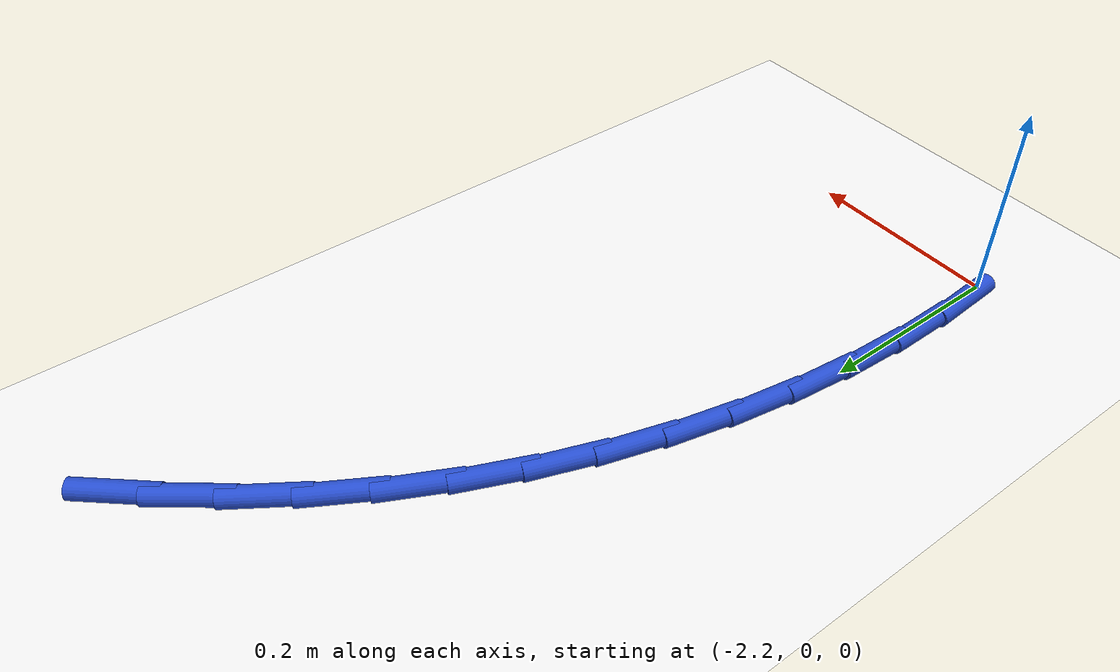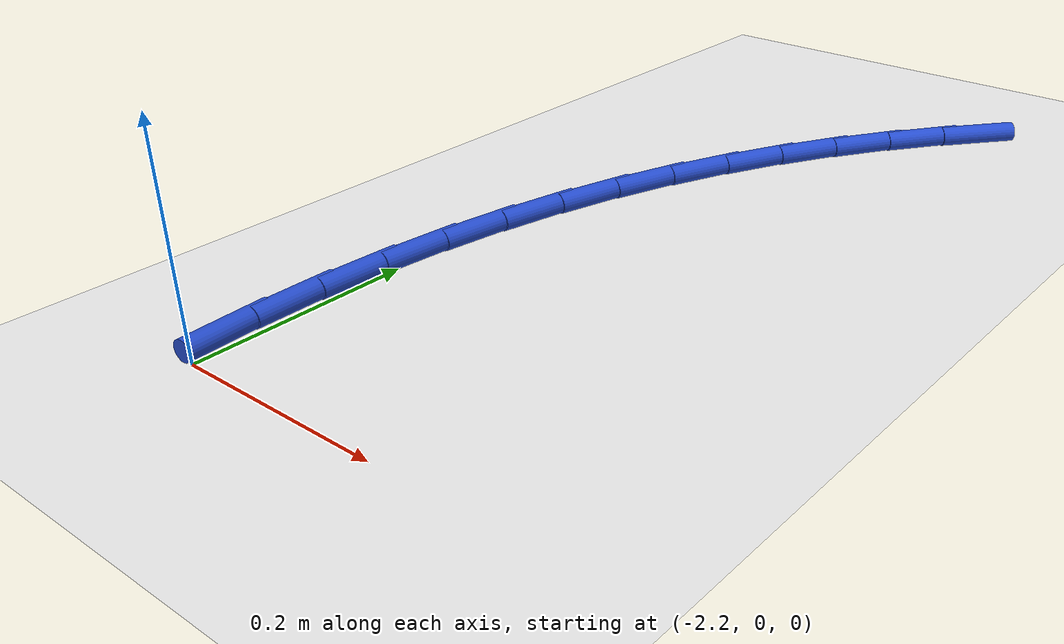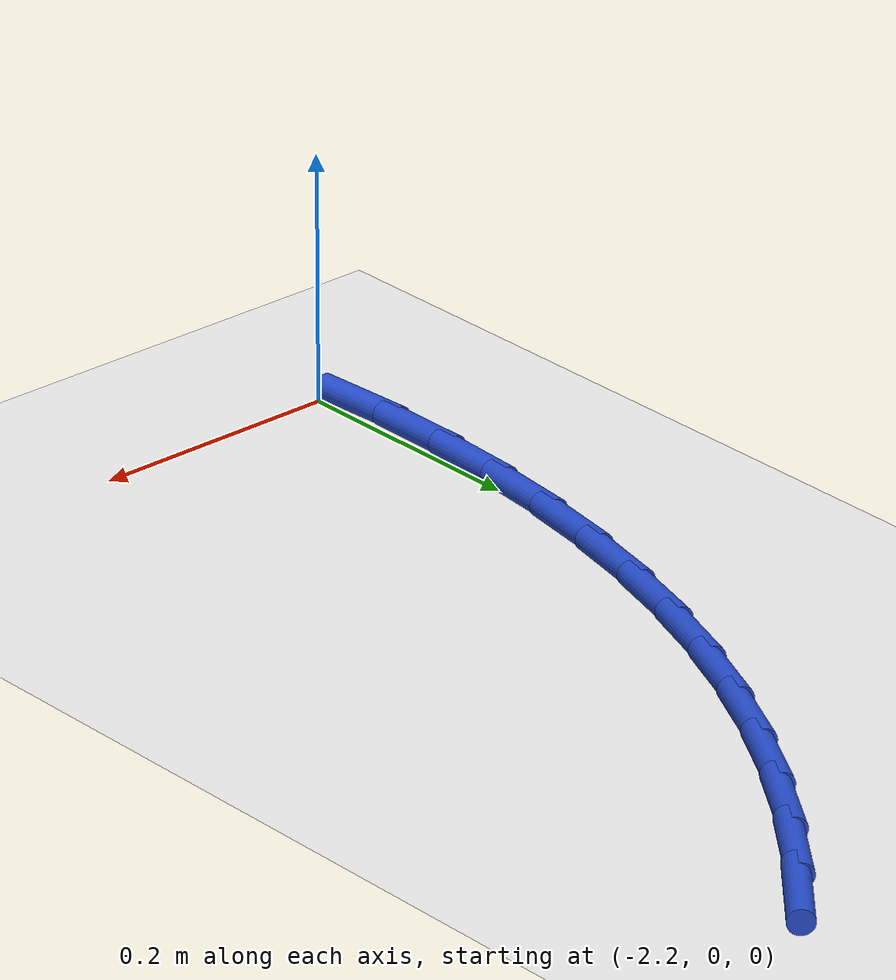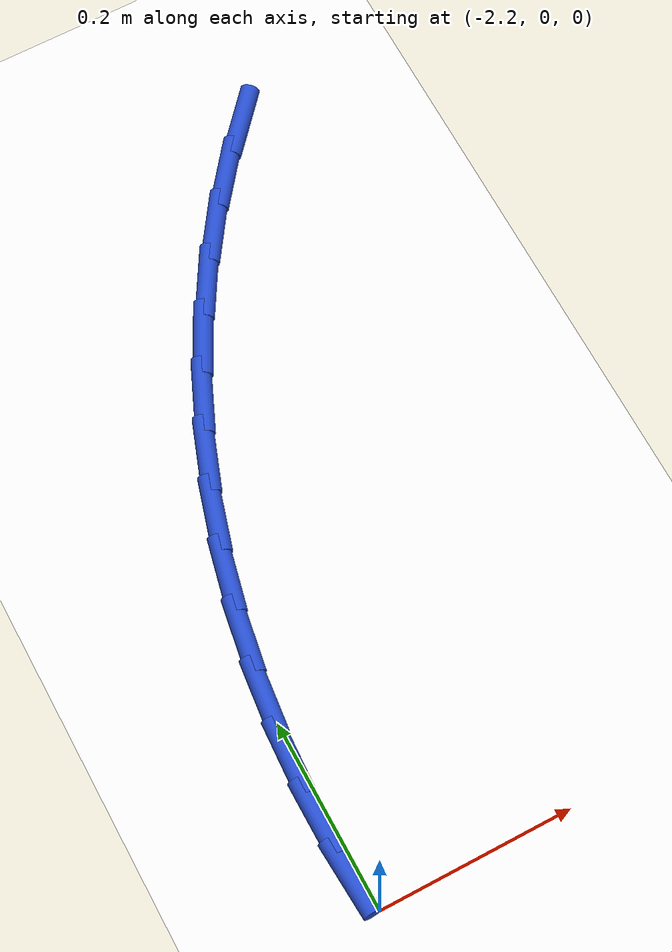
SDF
<sdf version="1.6">
 <world name="default">
  <model name="ground_plane">
   <static>1</static>
   <link name="link">
    <collision name="collision">
     <geometry><plane><normal>0 0 1</normal><size>100 100</size></plane></geometry>
     <surface><friction><ode><mu>100</mu><mu2>50</mu2></ode></friction></surface>
    </collision>
    <visual name="visual">
     <cast_shadows>0</cast_shadows>
     <geometry><plane><normal>0 0 1</normal><size>100 100</size></plane></geometry>
     <material>
      <script><uri>file://media/materials/scripts/gazebo.material</uri><name>Gazebo/WhiteGlow</name></script>
     </material>
    </visual>
   </link>
  </model>
  <model name="line">
   <link name="link_42">
    <pose>-1.9383369866604048 0.7841790876754535 0.01 0 1.57 0.8532784515354481</pose>
    <collision name="collision">
     <geometry><cylinder><radius>0.01</radius><length>0.08</length></cylinder></geometry>
    </collision>
    <visual name="visual">
     <material>
      <script><name>Gazebo/Blue</name><uri>file://media/materials/scripts/gazebo.material</uri></script>
     </material>
     <geometry><cylinder><radius>0.01</radius><length>0.08</length></cylinder></geometry>
    </visual>
   </link>
   <link name="link_43">
    <pose>-1.9792901647560455 0.7372513483693749 0.01 0 1.57 0.9159351143696797</pose>
    <collision name="collision">
     <geometry><cylinder><radius>0.01</radius><length>0.08</length></cylinder></geometry>
    </collision>
    <visual name="visual">
     <material>
      <script><name>Gazebo/Blue</name><uri>file://media/materials/scripts/gazebo.material</uri></script>
     </material>
     <geometry><cylinder><radius>0.01</radius><length>0.08</length></cylinder></geometry>
    </visual>
   </link>
   <link name="link_44">
    <pose>-2.017259477884292 0.6878059238343821 0.01 0 1.57 0.9780738526928687</pose>
    <collision name="collision">
     <geometry><cylinder><radius>0.01</radius><length>0.08</length></cylinder></geometry>
    </collision>
    <visual name="visual">
     <material>
      <script><name>Gazebo/Blue</name><uri>file://media/materials/scripts/gazebo.material</uri></script>
     </material>
     <geometry><cylinder><radius>0.01</radius><length>0.08</length></cylinder></geometry>
    </visual>
   </link>
   <link name="link_45">
    <pose>-2.0521185261620416 0.6360483193461981 0.01 0 1.57 1.03993455099218</pose>
    <collision name="collision">
     <geometry><cylinder><radius>0.01</radius><length>0.08</length></cylinder></geometry>
    </collision>
    <visual name="visual">
     <material>
      <script><name>Gazebo/Blue</name><uri>file://media/materials/scripts/gazebo.material</uri></script>
     </material>
     <geometry><cylinder><radius>0.01</radius><length>0.08</length></cylinder></geometry>
    </visual>
   </link>
   <link name="link_46">
    <pose>-2.0837409097061945 0.5821840401805466 0.01 0 1.57 1.1017607727693026</pose>
    <collision name="collision">
     <geometry><cylinder><radius>0.01</radius><length>0.08</length></cylinder></geometry>
    </collision>
    <visual name="visual">
     <material>
      <script><name>Gazebo/Blue</name><uri>file://media/materials/scripts/gazebo.material</uri></script>
     </material>
     <geometry><cylinder><radius>0.01</radius><length>0.08</length></cylinder></geometry>
    </visual>
   </link>
   <link name="link_47">
    <pose>-2.1120002286336477 0.5264185916131505 0.01 0 1.57 1.1637942307597902</pose>
    <collision name="collision">
     <geometry><cylinder><radius>0.01</radius><length>0.08</length></cylinder></geometry>
    </collision>
    <visual name="visual">
     <material>
      <script><name>Gazebo/Blue</name><uri>file://media/materials/scripts/gazebo.material</uri></script>
     </material>
     <geometry><cylinder><radius>0.01</radius><length>0.08</length></cylinder></geometry>
    </visual>
   </link>
   <link name="link_48">
    <pose>-2.1367700830612995 0.46895747891973333 0.01 0 1.57 1.2260790945737199</pose>
    <collision name="collision">
     <geometry><cylinder><radius>0.01</radius><length>0.08</length></cylinder></geometry>
    </collision>
    <visual name="visual">
     <material>
      <script><name>Gazebo/Blue</name><uri>file://media/materials/scripts/gazebo.material</uri></script>
     </material>
     <geometry><cylinder><radius>0.01</radius><length>0.08</length></cylinder></geometry>
    </visual>
   </link>
   <link name="link_49">
    <pose>-2.1579358522844814 0.41000865439109624 0.01 0 1.57 1.2873089490041683</pose>
    <collision name="collision">
     <geometry><cylinder><radius>0.01</radius><length>0.08</length></cylinder></geometry>
    </collision>
    <visual name="visual">
     <material>
      <script><name>Gazebo/Blue</name><uri>file://media/materials/scripts/gazebo.material</uri></script>
     </material>
     <geometry><cylinder><radius>0.01</radius><length>0.08</length></cylinder></geometry>
    </visual>
   </link>
   <link name="link_50">
    <pose>-2.175476796979396 0.3497995733042508 0.01 0 1.57 1.3469502104973508</pose>
    <collision name="collision">
     <geometry><cylinder><radius>0.01</radius><length>0.08</length></cylinder></geometry>
    </collision>
    <visual name="visual">
     <material>
      <script><name>Gazebo/Blue</name><uri>file://media/materials/scripts/gazebo.material</uri></script>
     </material>
     <geometry><cylinder><radius>0.01</radius><length>0.08</length></cylinder></geometry>
    </visual>
   </link>
   <link name="link_51">
    <pose>-2.1894170835131375 0.2885670196770316 0.01 0 1.57 1.4052155620617335</pose>
    <collision name="collision">
     <geometry><cylinder><radius>0.01</radius><length>0.08</length></cylinder></geometry>
    </collision>
    <visual name="visual">
     <material>
      <script><name>Gazebo/Blue</name><uri>file://media/materials/scripts/gazebo.material</uri></script>
     </material>
     <geometry><cylinder><radius>0.01</radius><length>0.08</length></cylinder></geometry>
    </visual>
   </link>
   <link name="link_52">
    <pose>-2.199781158245931 0.2265478356932491 0.01 0 1.57 1.4623467095927047</pose>
    <collision name="collision">
     <geometry><cylinder><radius>0.01</radius><length>0.08</length></cylinder></geometry>
    </collision>
    <visual name="visual">
     <material>
      <script><name>Gazebo/Blue</name><uri>file://media/materials/scripts/gazebo.material</uri></script>
     </material>
     <geometry><cylinder><radius>0.01</radius><length>0.08</length></cylinder></geometry>
    </visual>
   </link>
   <link name="link_53">
    <pose>-2.2065934675379983 0.16397886353671343 0.01 0 1.57 1.518603154956062</pose>
    <collision name="collision">
     <geometry><cylinder><radius>0.01</radius><length>0.08</length></cylinder></geometry>
    </collision>
    <visual name="visual">
     <material>
      <script><name>Gazebo/Blue</name><uri>file://media/materials/scripts/gazebo.material</uri></script>
     </material>
     <geometry><cylinder><radius>0.01</radius><length>0.08</length></cylinder></geometry>
    </visual>
   </link>
   <link name="link_54">
    <pose>-2.2098784577495643 0.10109694539123486 0.01 0 1.57 -1.5673355821253685</pose>
    <collision name="collision">
     <geometry><cylinder><radius>0.01</radius><length>0.08</length></cylinder></geometry>
    </collision>
    <visual name="visual">
     <material>
      <script><name>Gazebo/Blue</name><uri>file://media/materials/scripts/gazebo.material</uri></script>
     </material>
     <geometry><cylinder><radius>0.01</radius><length>0.08</length></cylinder></geometry>
    </visual>
   </link>
   <link name="link_55">
    <pose>-2.2096605752408522 0.03813892344062379 0.01 0 1.57 -1.5120031951482542</pose>
    <collision name="collision">
     <geometry><cylinder><radius>0.01</radius><length>0.08</length></cylinder></geometry>
    </collision>
    <visual name="visual">
     <material>
      <script><name>Gazebo/Blue</name><uri>file://media/materials/scripts/gazebo.material</uri></script>
     </material>
     <geometry><cylinder><radius>0.01</radius><length>0.08</length></cylinder></geometry>
    </visual>
   </link>
  </model>
 </world>
</sdf>
